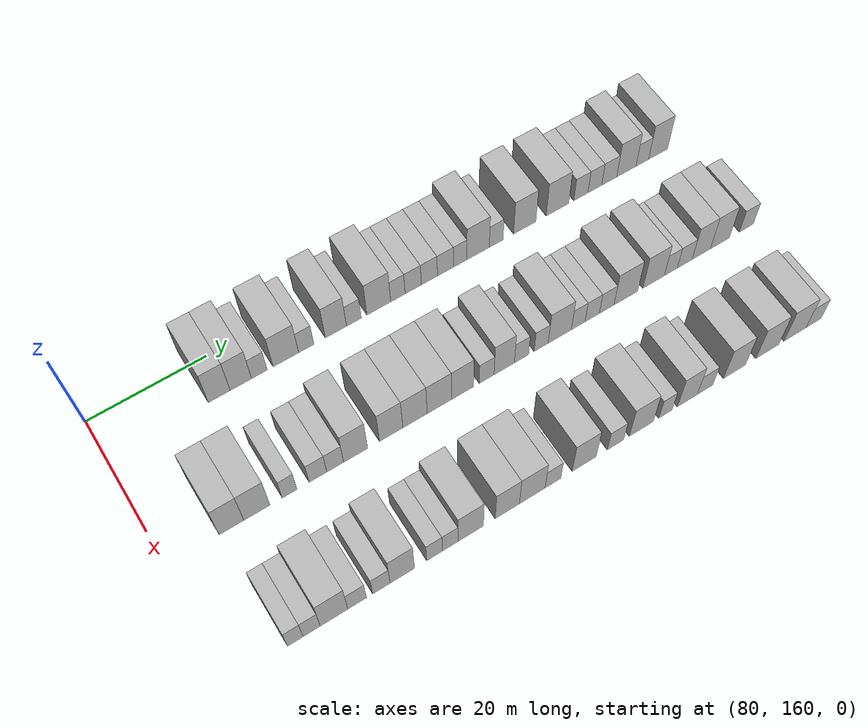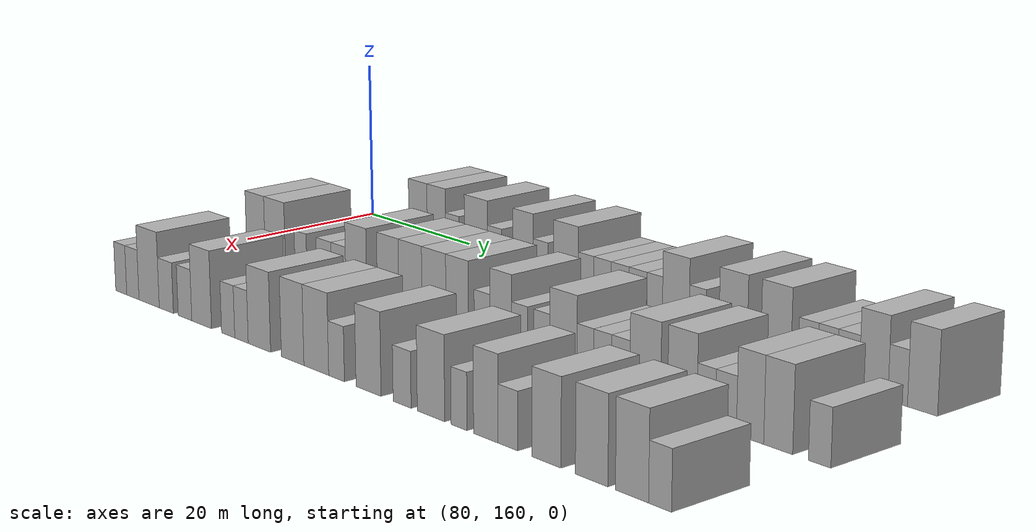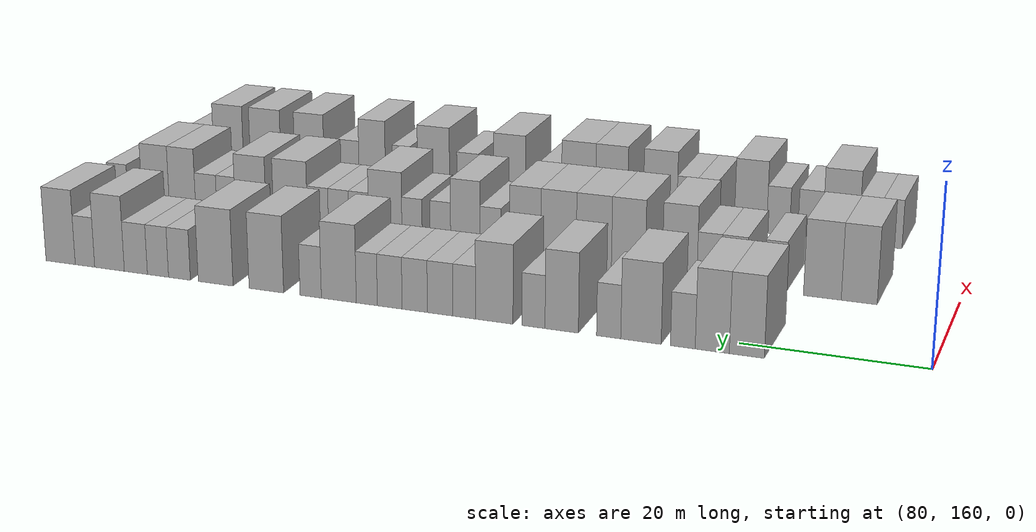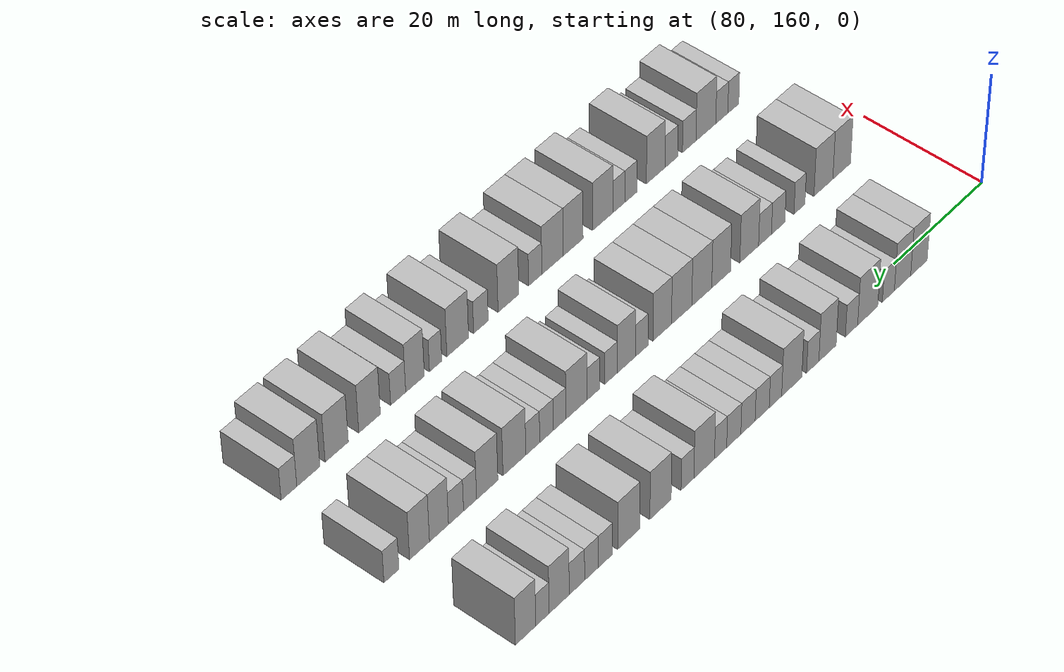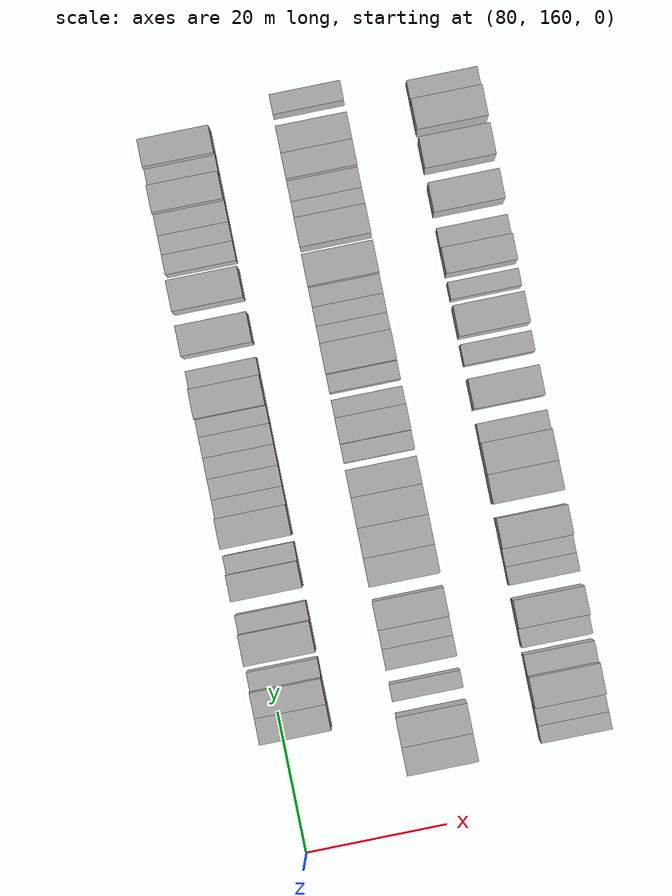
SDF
<sdf version="1.6">
 <world name="default">
  <model name="building_659">
   <static>1</static>
   <pose>82.0000 178.4962 0 0.000000 0.000000 0.000000</pose>
   <link name="link">
    <pose>0 0 4.50 0 0 0</pose>
    <collision name="collision"><geometry><box><size>10.0000 3.6787 9.0000</size></box></geometry></collision>
    <visual name="visual">
     <cast_shadows>0</cast_shadows>
     <geometry><box><size>10.0000 3.6787 9.0000</size></box></geometry>
     <material>
      <script>
       <uri>model://HANNAS_wall/materials/scripts</uri>
       <uri>model://HANNAS_wall/materials/textures</uri>
       <name>vrc/HANNAS_wall</name>
      </script>
     </material>
    </visual>
   </link>
  </model>
  <model name="building_660">
   <static>1</static>
   <pose>82.0000 182.1431 0 0.000000 0.000000 0.000000</pose>
   <link name="link">
    <pose>0 0 4.50 0 0 0</pose>
    <collision name="collision"><geometry><box><size>10.0000 3.6151 9.0000</size></box></geometry></collision>
    <visual name="visual">
     <cast_shadows>0</cast_shadows>
     <geometry><box><size>10.0000 3.6151 9.0000</size></box></geometry>
     <material>
      <script>
       <uri>model://HANNAS_wall/materials/scripts</uri>
       <uri>model://HANNAS_wall/materials/textures</uri>
       <name>vrc/HANNAS_wall</name>
      </script>
     </material>
    </visual>
   </link>
  </model>
  <model name="building_661">
   <static>1</static>
   <pose>82.0000 185.2763 0 0.000000 0.000000 0.000000</pose>
   <link name="link">
    <pose>0 0 3.00 0 0 0</pose>
    <collision name="collision"><geometry><box><size>10.0000 2.6513 6.0000</size></box></geometry></collision>
    <visual name="visual">
     <cast_shadows>0</cast_shadows>
     <geometry><box><size>10.0000 2.6513 6.0000</size></box></geometry>
     <material>
      <script>
       <uri>model://HANNAS_wall/materials/scripts</uri>
       <uri>model://HANNAS_wall/materials/textures</uri>
       <name>vrc/HANNAS_wall</name>
      </script>
     </material>
    </visual>
   </link>
  </model>
  <model name="building_662">
   <static>1</static>
   <pose>82.0000 189.7979 0 0.000000 0.000000 0.000000</pose>
   <link name="link">
    <pose>0 0 4.50 0 0 0</pose>
    <collision name="collision"><geometry><box><size>10.0000 4.3919 9.0000</size></box></geometry></collision>
    <visual name="visual">
     <cast_shadows>0</cast_shadows>
     <geometry><box><size>10.0000 4.3919 9.0000</size></box></geometry>
     <material>
      <script>
       <uri>model://HANNAS_wall/materials/scripts</uri>
       <uri>model://HANNAS_wall/materials/textures</uri>
       <name>vrc/HANNAS_wall</name>
      </script>
     </material>
    </visual>
   </link>
  </model>
  <model name="building_663">
   <static>1</static>
   <pose>82.0000 193.3204 0 0.000000 0.000000 0.000000</pose>
   <link name="link">
    <pose>0 0 3.00 0 0 0</pose>
    <collision name="collision"><geometry><box><size>10.0000 2.6532 6.0000</size></box></geometry></collision>
    <visual name="visual">
     <cast_shadows>0</cast_shadows>
     <geometry><box><size>10.0000 2.6532 6.0000</size></box></geometry>
     <material>
      <script>
       <uri>model://HANNAS_wall/materials/scripts</uri>
       <uri>model://HANNAS_wall/materials/textures</uri>
       <name>vrc/HANNAS_wall</name>
      </script>
     </material>
    </visual>
   </link>
  </model>
  <model name="building_664">
   <static>1</static>
   <pose>82.0000 198.5083 0 0.000000 0.000000 0.000000</pose>
   <link name="link">
    <pose>0 0 4.50 0 0 0</pose>
    <collision name="collision"><geometry><box><size>10.0000 3.7227 9.0000</size></box></geometry></collision>
    <visual name="visual">
     <cast_shadows>0</cast_shadows>
     <geometry><box><size>10.0000 3.7227 9.0000</size></box></geometry>
     <material>
      <script>
       <uri>model://HANNAS_wall/materials/scripts</uri>
       <uri>model://HANNAS_wall/materials/textures</uri>
       <name>vrc/HANNAS_wall</name>
      </script>
     </material>
    </visual>
   </link>
  </model>
  <model name="building_665">
   <static>1</static>
   <pose>82.0000 201.6762 0 0.000000 0.000000 0.000000</pose>
   <link name="link">
    <pose>0 0 3.00 0 0 0</pose>
    <collision name="collision"><geometry><box><size>10.0000 2.6131 6.0000</size></box></geometry></collision>
    <visual name="visual">
     <cast_shadows>0</cast_shadows>
     <geometry><box><size>10.0000 2.6131 6.0000</size></box></geometry>
     <material>
      <script>
       <uri>model://HANNAS_wall/materials/scripts</uri>
       <uri>model://HANNAS_wall/materials/textures</uri>
       <name>vrc/HANNAS_wall</name>
      </script>
     </material>
    </visual>
   </link>
  </model>
  <model name="building_666">
   <static>1</static>
   <pose>82.0000 206.1211 0 0.000000 0.000000 0.000000</pose>
   <link name="link">
    <pose>0 0 4.50 0 0 0</pose>
    <collision name="collision"><geometry><box><size>10.0000 4.2768 9.0000</size></box></geometry></collision>
    <visual name="visual">
     <cast_shadows>0</cast_shadows>
     <geometry><box><size>10.0000 4.2768 9.0000</size></box></geometry>
     <material>
      <script>
       <uri>model://HANNAS_wall/materials/scripts</uri>
       <uri>model://HANNAS_wall/materials/textures</uri>
       <name>vrc/HANNAS_wall</name>
      </script>
     </material>
    </visual>
   </link>
  </model>
  <model name="building_667">
   <static>1</static>
   <pose>82.0000 209.5627 0 0.000000 0.000000 0.000000</pose>
   <link name="link">
    <pose>0 0 3.00 0 0 0</pose>
    <collision name="collision"><geometry><box><size>10.0000 2.6064 6.0000</size></box></geometry></collision>
    <visual name="visual">
     <cast_shadows>0</cast_shadows>
     <geometry><box><size>10.0000 2.6064 6.0000</size></box></geometry>
     <material>
      <script>
       <uri>model://HANNAS_wall/materials/scripts</uri>
       <uri>model://HANNAS_wall/materials/textures</uri>
       <name>vrc/HANNAS_wall</name>
      </script>
     </material>
    </visual>
   </link>
  </model>
  <model name="building_668">
   <static>1</static>
   <pose>82.0000 212.3404 0 0.000000 0.000000 0.000000</pose>
   <link name="link">
    <pose>0 0 3.00 0 0 0</pose>
    <collision name="collision"><geometry><box><size>10.0000 2.9490 6.0000</size></box></geometry></collision>
    <visual name="visual">
     <cast_shadows>0</cast_shadows>
     <geometry><box><size>10.0000 2.9490 6.0000</size></box></geometry>
     <material>
      <script>
       <uri>model://HANNAS_wall/materials/scripts</uri>
       <uri>model://HANNAS_wall/materials/textures</uri>
       <name>vrc/HANNAS_wall</name>
      </script>
     </material>
    </visual>
   </link>
  </model>
  <model name="building_669">
   <static>1</static>
   <pose>82.0000 215.2959 0 0.000000 0.000000 0.000000</pose>
   <link name="link">
    <pose>0 0 3.00 0 0 0</pose>
    <collision name="collision"><geometry><box><size>10.0000 2.9620 6.0000</size></box></geometry></collision>
    <visual name="visual">
     <cast_shadows>0</cast_shadows>
     <geometry><box><size>10.0000 2.9620 6.0000</size></box></geometry>
     <material>
      <script>
       <uri>model://HANNAS_wall/materials/scripts</uri>
       <uri>model://HANNAS_wall/materials/textures</uri>
       <name>vrc/HANNAS_wall</name>
      </script>
     </material>
    </visual>
   </link>
  </model>
  <model name="building_670">
   <static>1</static>
   <pose>82.0000 218.2406 0 0.000000 0.000000 0.000000</pose>
   <link name="link">
    <pose>0 0 3.00 0 0 0</pose>
    <collision name="collision"><geometry><box><size>10.0000 2.9273 6.0000</size></box></geometry></collision>
    <visual name="visual">
     <cast_shadows>0</cast_shadows>
     <geometry><box><size>10.0000 2.9273 6.0000</size></box></geometry>
     <material>
      <script>
       <uri>model://HANNAS_wall/materials/scripts</uri>
       <uri>model://HANNAS_wall/materials/textures</uri>
       <name>vrc/HANNAS_wall</name>
      </script>
     </material>
    </visual>
   </link>
  </model>
  <model name="building_671">
   <static>1</static>
   <pose>82.0000 220.9592 0 0.000000 0.000000 0.000000</pose>
   <link name="link">
    <pose>0 0 3.00 0 0 0</pose>
    <collision name="collision"><geometry><box><size>10.0000 2.5099 6.0000</size></box></geometry></collision>
    <visual name="visual">
     <cast_shadows>0</cast_shadows>
     <geometry><box><size>10.0000 2.5099 6.0000</size></box></geometry>
     <material>
      <script>
       <uri>model://HANNAS_wall/materials/scripts</uri>
       <uri>model://HANNAS_wall/materials/textures</uri>
       <name>vrc/HANNAS_wall</name>
      </script>
     </material>
    </visual>
   </link>
  </model>
  <model name="building_672">
   <static>1</static>
   <pose>82.0000 224.3136 0 0.000000 0.000000 0.000000</pose>
   <link name="link">
    <pose>0 0 4.50 0 0 0</pose>
    <collision name="collision"><geometry><box><size>10.0000 4.1989 9.0000</size></box></geometry></collision>
    <visual name="visual">
     <cast_shadows>0</cast_shadows>
     <geometry><box><size>10.0000 4.1989 9.0000</size></box></geometry>
     <material>
      <script>
       <uri>model://HANNAS_wall/materials/scripts</uri>
       <uri>model://HANNAS_wall/materials/textures</uri>
       <name>vrc/HANNAS_wall</name>
      </script>
     </material>
    </visual>
   </link>
  </model>
  <model name="building_673">
   <static>1</static>
   <pose>82.0000 227.7098 0 0.000000 0.000000 0.000000</pose>
   <link name="link">
    <pose>0 0 3.00 0 0 0</pose>
    <collision name="collision"><geometry><box><size>10.0000 2.5934 6.0000</size></box></geometry></collision>
    <visual name="visual">
     <cast_shadows>0</cast_shadows>
     <geometry><box><size>10.0000 2.5934 6.0000</size></box></geometry>
     <material>
      <script>
       <uri>model://HANNAS_wall/materials/scripts</uri>
       <uri>model://HANNAS_wall/materials/textures</uri>
       <name>vrc/HANNAS_wall</name>
      </script>
     </material>
    </visual>
   </link>
  </model>
  <model name="building_674">
   <static>1</static>
   <pose>82.0000 233.1360 0 0.000000 0.000000 0.000000</pose>
   <link name="link">
    <pose>0 0 4.50 0 0 0</pose>
    <collision name="collision"><geometry><box><size>10.0000 4.2591 9.0000</size></box></geometry></collision>
    <visual name="visual">
     <cast_shadows>0</cast_shadows>
     <geometry><box><size>10.0000 4.2591 9.0000</size></box></geometry>
     <material>
      <script>
       <uri>model://HANNAS_wall/materials/scripts</uri>
       <uri>model://HANNAS_wall/materials/textures</uri>
       <name>vrc/HANNAS_wall</name>
      </script>
     </material>
    </visual>
   </link>
  </model>
  <model name="building_675">
   <static>1</static>
   <pose>82.0000 239.4495 0 0.000000 0.000000 0.000000</pose>
   <link name="link">
    <pose>0 0 4.50 0 0 0</pose>
    <collision name="collision"><geometry><box><size>10.0000 4.3679 9.0000</size></box></geometry></collision>
    <visual name="visual">
     <cast_shadows>0</cast_shadows>
     <geometry><box><size>10.0000 4.3679 9.0000</size></box></geometry>
     <material>
      <script>
       <uri>model://HANNAS_wall/materials/scripts</uri>
       <uri>model://HANNAS_wall/materials/textures</uri>
       <name>vrc/HANNAS_wall</name>
      </script>
     </material>
    </visual>
   </link>
  </model>
  <model name="building_676">
   <static>1</static>
   <pose>82.0000 244.0221 0 0.000000 0.000000 0.000000</pose>
   <link name="link">
    <pose>0 0 3.00 0 0 0</pose>
    <collision name="collision"><geometry><box><size>10.0000 2.7771 6.0000</size></box></geometry></collision>
    <visual name="visual">
     <cast_shadows>0</cast_shadows>
     <geometry><box><size>10.0000 2.7771 6.0000</size></box></geometry>
     <material>
      <script>
       <uri>model://HANNAS_wall/materials/scripts</uri>
       <uri>model://HANNAS_wall/materials/textures</uri>
       <name>vrc/HANNAS_wall</name>
      </script>
     </material>
    </visual>
   </link>
  </model>
  <model name="building_677">
   <static>1</static>
   <pose>82.0000 246.7639 0 0.000000 0.000000 0.000000</pose>
   <link name="link">
    <pose>0 0 3.00 0 0 0</pose>
    <collision name="collision"><geometry><box><size>10.0000 2.7065 6.0000</size></box></geometry></collision>
    <visual name="visual">
     <cast_shadows>0</cast_shadows>
     <geometry><box><size>10.0000 2.7065 6.0000</size></box></geometry>
     <material>
      <script>
       <uri>model://HANNAS_wall/materials/scripts</uri>
       <uri>model://HANNAS_wall/materials/textures</uri>
       <name>vrc/HANNAS_wall</name>
      </script>
     </material>
    </visual>
   </link>
  </model>
  <model name="building_678">
   <static>1</static>
   <pose>82.0000 249.6074 0 0.000000 0.000000 0.000000</pose>
   <link name="link">
    <pose>0 0 3.00 0 0 0</pose>
    <collision name="collision"><geometry><box><size>10.0000 2.9806 6.0000</size></box></geometry></collision>
    <visual name="visual">
     <cast_shadows>0</cast_shadows>
     <geometry><box><size>10.0000 2.9806 6.0000</size></box></geometry>
     <material>
      <script>
       <uri>model://HANNAS_wall/materials/scripts</uri>
       <uri>model://HANNAS_wall/materials/textures</uri>
       <name>vrc/HANNAS_wall</name>
      </script>
     </material>
    </visual>
   </link>
  </model>
  <model name="building_679">
   <static>1</static>
   <pose>82.0000 253.0312 0 0.000000 0.000000 0.000000</pose>
   <link name="link">
    <pose>0 0 4.50 0 0 0</pose>
    <collision name="collision"><geometry><box><size>10.0000 3.8669 9.0000</size></box></geometry></collision>
    <visual name="visual">
     <cast_shadows>0</cast_shadows>
     <geometry><box><size>10.0000 3.8669 9.0000</size></box></geometry>
     <material>
      <script>
       <uri>model://HANNAS_wall/materials/scripts</uri>
       <uri>model://HANNAS_wall/materials/textures</uri>
       <name>vrc/HANNAS_wall</name>
      </script>
     </material>
    </visual>
   </link>
  </model>
  <model name="building_680">
   <static>1</static>
   <pose>82.0000 256.2432 0 0.000000 0.000000 0.000000</pose>
   <link name="link">
    <pose>0 0 3.00 0 0 0</pose>
    <collision name="collision"><geometry><box><size>10.0000 2.5572 6.0000</size></box></geometry></collision>
    <visual name="visual">
     <cast_shadows>0</cast_shadows>
     <geometry><box><size>10.0000 2.5572 6.0000</size></box></geometry>
     <material>
      <script>
       <uri>model://HANNAS_wall/materials/scripts</uri>
       <uri>model://HANNAS_wall/materials/textures</uri>
       <name>vrc/HANNAS_wall</name>
      </script>
     </material>
    </visual>
   </link>
  </model>
  <model name="building_681">
   <static>1</static>
   <pose>82.0000 259.4577 0 0.000000 0.000000 0.000000</pose>
   <link name="link">
    <pose>0 0 4.50 0 0 0</pose>
    <collision name="collision"><geometry><box><size>10.0000 3.8717 9.0000</size></box></geometry></collision>
    <visual name="visual">
     <cast_shadows>0</cast_shadows>
     <geometry><box><size>10.0000 3.8717 9.0000</size></box></geometry>
     <material>
      <script>
       <uri>model://HANNAS_wall/materials/scripts</uri>
       <uri>model://HANNAS_wall/materials/textures</uri>
       <name>vrc/HANNAS_wall</name>
      </script>
     </material>
    </visual>
   </link>
  </model>
  <model name="building_835">
   <static>1</static>
   <pose>101.0000 170.4415 0 0.000000 0.000000 0.000000</pose>
   <link name="link">
    <pose>0 0 4.50 0 0 0</pose>
    <collision name="collision"><geometry><box><size>10.0000 3.9598 9.0000</size></box></geometry></collision>
    <visual name="visual">
     <cast_shadows>0</cast_shadows>
     <geometry><box><size>10.0000 3.9598 9.0000</size></box></geometry>
     <material>
      <script>
       <uri>model://HANNAS_wall/materials/scripts</uri>
       <uri>model://HANNAS_wall/materials/textures</uri>
       <name>vrc/HANNAS_wall</name>
      </script>
     </material>
    </visual>
   </link>
  </model>
  <model name="building_836">
   <static>1</static>
   <pose>101.0000 174.5262 0 0.000000 0.000000 0.000000</pose>
   <link name="link">
    <pose>0 0 4.50 0 0 0</pose>
    <collision name="collision"><geometry><box><size>10.0000 4.2097 9.0000</size></box></geometry></collision>
    <visual name="visual">
     <cast_shadows>0</cast_shadows>
     <geometry><box><size>10.0000 4.2097 9.0000</size></box></geometry>
     <material>
      <script>
       <uri>model://HANNAS_wall/materials/scripts</uri>
       <uri>model://HANNAS_wall/materials/textures</uri>
       <name>vrc/HANNAS_wall</name>
      </script>
     </material>
    </visual>
   </link>
  </model>
  <model name="building_837">
   <static>1</static>
   <pose>101.0000 179.8396 0 0.000000 0.000000 0.000000</pose>
   <link name="link">
    <pose>0 0 3.00 0 0 0</pose>
    <collision name="collision"><geometry><box><size>10.0000 2.4171 6.0000</size></box></geometry></collision>
    <visual name="visual">
     <cast_shadows>0</cast_shadows>
     <geometry><box><size>10.0000 2.4171 6.0000</size></box></geometry>
     <material>
      <script>
       <uri>model://HANNAS_wall/materials/scripts</uri>
       <uri>model://HANNAS_wall/materials/textures</uri>
       <name>vrc/HANNAS_wall</name>
      </script>
     </material>
    </visual>
   </link>
  </model>
  <model name="building_838">
   <static>1</static>
   <pose>101.0000 184.5158 0 0.000000 0.000000 0.000000</pose>
   <link name="link">
    <pose>0 0 3.00 0 0 0</pose>
    <collision name="collision"><geometry><box><size>10.0000 2.9354 6.0000</size></box></geometry></collision>
    <visual name="visual">
     <cast_shadows>0</cast_shadows>
     <geometry><box><size>10.0000 2.9354 6.0000</size></box></geometry>
     <material>
      <script>
       <uri>model://HANNAS_wall/materials/scripts</uri>
       <uri>model://HANNAS_wall/materials/textures</uri>
       <name>vrc/HANNAS_wall</name>
      </script>
     </material>
    </visual>
   </link>
  </model>
  <model name="building_839">
   <static>1</static>
   <pose>101.0000 187.3850 0 0.000000 0.000000 0.000000</pose>
   <link name="link">
    <pose>0 0 3.00 0 0 0</pose>
    <collision name="collision"><geometry><box><size>10.0000 2.8029 6.0000</size></box></geometry></collision>
    <visual name="visual">
     <cast_shadows>0</cast_shadows>
     <geometry><box><size>10.0000 2.8029 6.0000</size></box></geometry>
     <material>
      <script>
       <uri>model://HANNAS_wall/materials/scripts</uri>
       <uri>model://HANNAS_wall/materials/textures</uri>
       <name>vrc/HANNAS_wall</name>
      </script>
     </material>
    </visual>
   </link>
  </model>
  <model name="building_840">
   <static>1</static>
   <pose>101.0000 190.8097 0 0.000000 0.000000 0.000000</pose>
   <link name="link">
    <pose>0 0 4.50 0 0 0</pose>
    <collision name="collision"><geometry><box><size>10.0000 4.0464 9.0000</size></box></geometry></collision>
    <visual name="visual">
     <cast_shadows>0</cast_shadows>
     <geometry><box><size>10.0000 4.0464 9.0000</size></box></geometry>
     <material>
      <script>
       <uri>model://HANNAS_wall/materials/scripts</uri>
       <uri>model://HANNAS_wall/materials/textures</uri>
       <name>vrc/HANNAS_wall</name>
      </script>
     </material>
    </visual>
   </link>
  </model>
  <model name="building_841">
   <static>1</static>
   <pose>101.0000 196.8350 0 0.000000 0.000000 0.000000</pose>
   <link name="link">
    <pose>0 0 4.50 0 0 0</pose>
    <collision name="collision"><geometry><box><size>10.0000 4.0042 9.0000</size></box></geometry></collision>
    <visual name="visual">
     <cast_shadows>0</cast_shadows>
     <geometry><box><size>10.0000 4.0042 9.0000</size></box></geometry>
     <material>
      <script>
       <uri>model://HANNAS_wall/materials/scripts</uri>
       <uri>model://HANNAS_wall/materials/textures</uri>
       <name>vrc/HANNAS_wall</name>
      </script>
     </material>
    </visual>
   </link>
  </model>
  <model name="building_842">
   <static>1</static>
   <pose>101.0000 200.9502 0 0.000000 0.000000 0.000000</pose>
   <link name="link">
    <pose>0 0 4.50 0 0 0</pose>
    <collision name="collision"><geometry><box><size>10.0000 4.2261 9.0000</size></box></geometry></collision>
    <visual name="visual">
     <cast_shadows>0</cast_shadows>
     <geometry><box><size>10.0000 4.2261 9.0000</size></box></geometry>
     <material>
      <script>
       <uri>model://HANNAS_wall/materials/scripts</uri>
       <uri>model://HANNAS_wall/materials/textures</uri>
       <name>vrc/HANNAS_wall</name>
      </script>
     </material>
    </visual>
   </link>
  </model>
  <model name="building_843">
   <static>1</static>
   <pose>101.0000 205.1934 0 0.000000 0.000000 0.000000</pose>
   <link name="link">
    <pose>0 0 4.50 0 0 0</pose>
    <collision name="collision"><geometry><box><size>10.0000 4.2603 9.0000</size></box></geometry></collision>
    <visual name="visual">
     <cast_shadows>0</cast_shadows>
     <geometry><box><size>10.0000 4.2603 9.0000</size></box></geometry>
     <material>
      <script>
       <uri>model://HANNAS_wall/materials/scripts</uri>
       <uri>model://HANNAS_wall/materials/textures</uri>
       <name>vrc/HANNAS_wall</name>
      </script>
     </material>
    </visual>
   </link>
  </model>
  <model name="building_844">
   <static>1</static>
   <pose>101.0000 209.2634 0 0.000000 0.000000 0.000000</pose>
   <link name="link">
    <pose>0 0 4.50 0 0 0</pose>
    <collision name="collision"><geometry><box><size>10.0000 3.8798 9.0000</size></box></geometry></collision>
    <visual name="visual">
     <cast_shadows>0</cast_shadows>
     <geometry><box><size>10.0000 3.8798 9.0000</size></box></geometry>
     <material>
      <script>
       <uri>model://HANNAS_wall/materials/scripts</uri>
       <uri>model://HANNAS_wall/materials/textures</uri>
       <name>vrc/HANNAS_wall</name>
      </script>
     </material>
    </visual>
   </link>
  </model>
  <model name="building_845">
   <static>1</static>
   <pose>101.0000 213.5293 0 0.000000 0.000000 0.000000</pose>
   <link name="link">
    <pose>0 0 3.00 0 0 0</pose>
    <collision name="collision"><geometry><box><size>10.0000 2.6518 6.0000</size></box></geometry></collision>
    <visual name="visual">
     <cast_shadows>0</cast_shadows>
     <geometry><box><size>10.0000 2.6518 6.0000</size></box></geometry>
     <material>
      <script>
       <uri>model://HANNAS_wall/materials/scripts</uri>
       <uri>model://HANNAS_wall/materials/textures</uri>
       <name>vrc/HANNAS_wall</name>
      </script>
     </material>
    </visual>
   </link>
  </model>
  <model name="building_846">
   <static>1</static>
   <pose>101.0000 216.6802 0 0.000000 0.000000 0.000000</pose>
   <link name="link">
    <pose>0 0 4.50 0 0 0</pose>
    <collision name="collision"><geometry><box><size>10.0000 3.6499 9.0000</size></box></geometry></collision>
    <visual name="visual">
     <cast_shadows>0</cast_shadows>
     <geometry><box><size>10.0000 3.6499 9.0000</size></box></geometry>
     <material>
      <script>
       <uri>model://HANNAS_wall/materials/scripts</uri>
       <uri>model://HANNAS_wall/materials/textures</uri>
       <name>vrc/HANNAS_wall</name>
      </script>
     </material>
    </visual>
   </link>
  </model>
  <model name="building_847">
   <static>1</static>
   <pose>101.0000 219.7996 0 0.000000 0.000000 0.000000</pose>
   <link name="link">
    <pose>0 0 3.00 0 0 0</pose>
    <collision name="collision"><geometry><box><size>10.0000 2.5889 6.0000</size></box></geometry></collision>
    <visual name="visual">
     <cast_shadows>0</cast_shadows>
     <geometry><box><size>10.0000 2.5889 6.0000</size></box></geometry>
     <material>
      <script>
       <uri>model://HANNAS_wall/materials/scripts</uri>
       <uri>model://HANNAS_wall/materials/textures</uri>
       <name>vrc/HANNAS_wall</name>
      </script>
     </material>
    </visual>
   </link>
  </model>
  <model name="building_848">
   <static>1</static>
   <pose>101.0000 223.3820 0 0.000000 0.000000 0.000000</pose>
   <link name="link">
    <pose>0 0 3.00 0 0 0</pose>
    <collision name="collision"><geometry><box><size>10.0000 2.5759 6.0000</size></box></geometry></collision>
    <visual name="visual">
     <cast_shadows>0</cast_shadows>
     <geometry><box><size>10.0000 2.5759 6.0000</size></box></geometry>
     <material>
      <script>
       <uri>model://HANNAS_wall/materials/scripts</uri>
       <uri>model://HANNAS_wall/materials/textures</uri>
       <name>vrc/HANNAS_wall</name>
      </script>
     </material>
    </visual>
   </link>
  </model>
  <model name="building_849">
   <static>1</static>
   <pose>101.0000 226.8044 0 0.000000 0.000000 0.000000</pose>
   <link name="link">
    <pose>0 0 4.50 0 0 0</pose>
    <collision name="collision"><geometry><box><size>10.0000 4.2690 9.0000</size></box></geometry></collision>
    <visual name="visual">
     <cast_shadows>0</cast_shadows>
     <geometry><box><size>10.0000 4.2690 9.0000</size></box></geometry>
     <material>
      <script>
       <uri>model://HANNAS_wall/materials/scripts</uri>
       <uri>model://HANNAS_wall/materials/textures</uri>
       <name>vrc/HANNAS_wall</name>
      </script>
     </material>
    </visual>
   </link>
  </model>
  <model name="building_850">
   <static>1</static>
   <pose>101.0000 230.2138 0 0.000000 0.000000 0.000000</pose>
   <link name="link">
    <pose>0 0 3.00 0 0 0</pose>
    <collision name="collision"><geometry><box><size>10.0000 2.5498 6.0000</size></box></geometry></collision>
    <visual name="visual">
     <cast_shadows>0</cast_shadows>
     <geometry><box><size>10.0000 2.5498 6.0000</size></box></geometry>
     <material>
      <script>
       <uri>model://HANNAS_wall/materials/scripts</uri>
       <uri>model://HANNAS_wall/materials/textures</uri>
       <name>vrc/HANNAS_wall</name>
      </script>
     </material>
    </visual>
   </link>
  </model>
  <model name="building_851">
   <static>1</static>
   <pose>101.0000 232.8340 0 0.000000 0.000000 0.000000</pose>
   <link name="link">
    <pose>0 0 3.00 0 0 0</pose>
    <collision name="collision"><geometry><box><size>10.0000 2.6905 6.0000</size></box></geometry></collision>
    <visual name="visual">
     <cast_shadows>0</cast_shadows>
     <geometry><box><size>10.0000 2.6905 6.0000</size></box></geometry>
     <material>
      <script>
       <uri>model://HANNAS_wall/materials/scripts</uri>
       <uri>model://HANNAS_wall/materials/textures</uri>
       <name>vrc/HANNAS_wall</name>
      </script>
     </material>
    </visual>
   </link>
  </model>
  <model name="building_852">
   <static>1</static>
   <pose>101.0000 235.5538 0 0.000000 0.000000 0.000000</pose>
   <link name="link">
    <pose>0 0 3.00 0 0 0</pose>
    <collision name="collision"><geometry><box><size>10.0000 2.7492 6.0000</size></box></geometry></collision>
    <visual name="visual">
     <cast_shadows>0</cast_shadows>
     <geometry><box><size>10.0000 2.7492 6.0000</size></box></geometry>
     <material>
      <script>
       <uri>model://HANNAS_wall/materials/scripts</uri>
       <uri>model://HANNAS_wall/materials/textures</uri>
       <name>vrc/HANNAS_wall</name>
      </script>
     </material>
    </visual>
   </link>
  </model>
  <model name="building_853">
   <static>1</static>
   <pose>101.0000 239.1760 0 0.000000 0.000000 0.000000</pose>
   <link name="link">
    <pose>0 0 4.50 0 0 0</pose>
    <collision name="collision"><geometry><box><size>10.0000 4.4952 9.0000</size></box></geometry></collision>
    <visual name="visual">
     <cast_shadows>0</cast_shadows>
     <geometry><box><size>10.0000 4.4952 9.0000</size></box></geometry>
     <material>
      <script>
       <uri>model://HANNAS_wall/materials/scripts</uri>
       <uri>model://HANNAS_wall/materials/textures</uri>
       <name>vrc/HANNAS_wall</name>
      </script>
     </material>
    </visual>
   </link>
  </model>
  <model name="building_854">
   <static>1</static>
   <pose>101.0000 244.4934 0 0.000000 0.000000 0.000000</pose>
   <link name="link">
    <pose>0 0 4.50 0 0 0</pose>
    <collision name="collision"><geometry><box><size>10.0000 4.1396 9.0000</size></box></geometry></collision>
    <visual name="visual">
     <cast_shadows>0</cast_shadows>
     <geometry><box><size>10.0000 4.1396 9.0000</size></box></geometry>
     <material>
      <script>
       <uri>model://HANNAS_wall/materials/scripts</uri>
       <uri>model://HANNAS_wall/materials/textures</uri>
       <name>vrc/HANNAS_wall</name>
      </script>
     </material>
    </visual>
   </link>
  </model>
  <model name="building_855">
   <static>1</static>
   <pose>101.0000 247.8208 0 0.000000 0.000000 0.000000</pose>
   <link name="link">
    <pose>0 0 3.00 0 0 0</pose>
    <collision name="collision"><geometry><box><size>10.0000 2.5152 6.0000</size></box></geometry></collision>
    <visual name="visual">
     <cast_shadows>0</cast_shadows>
     <geometry><box><size>10.0000 2.5152 6.0000</size></box></geometry>
     <material>
      <script>
       <uri>model://HANNAS_wall/materials/scripts</uri>
       <uri>model://HANNAS_wall/materials/textures</uri>
       <name>vrc/HANNAS_wall</name>
      </script>
     </material>
    </visual>
   </link>
  </model>
  <model name="building_856">
   <static>1</static>
   <pose>101.0000 250.5273 0 0.000000 0.000000 0.000000</pose>
   <link name="link">
    <pose>0 0 3.00 0 0 0</pose>
    <collision name="collision"><geometry><box><size>10.0000 2.8977 6.0000</size></box></geometry></collision>
    <visual name="visual">
     <cast_shadows>0</cast_shadows>
     <geometry><box><size>10.0000 2.8977 6.0000</size></box></geometry>
     <material>
      <script>
       <uri>model://HANNAS_wall/materials/scripts</uri>
       <uri>model://HANNAS_wall/materials/textures</uri>
       <name>vrc/HANNAS_wall</name>
      </script>
     </material>
    </visual>
   </link>
  </model>
  <model name="building_857">
   <static>1</static>
   <pose>101.0000 253.7915 0 0.000000 0.000000 0.000000</pose>
   <link name="link">
    <pose>0 0 4.50 0 0 0</pose>
    <collision name="collision"><geometry><box><size>10.0000 3.6309 9.0000</size></box></geometry></collision>
    <visual name="visual">
     <cast_shadows>0</cast_shadows>
     <geometry><box><size>10.0000 3.6309 9.0000</size></box></geometry>
     <material>
      <script>
       <uri>model://HANNAS_wall/materials/scripts</uri>
       <uri>model://HANNAS_wall/materials/textures</uri>
       <name>vrc/HANNAS_wall</name>
      </script>
     </material>
    </visual>
   </link>
  </model>
  <model name="building_858">
   <static>1</static>
   <pose>101.0000 257.4919 0 0.000000 0.000000 0.000000</pose>
   <link name="link">
    <pose>0 0 4.50 0 0 0</pose>
    <collision name="collision"><geometry><box><size>10.0000 3.7697 9.0000</size></box></geometry></collision>
    <visual name="visual">
     <cast_shadows>0</cast_shadows>
     <geometry><box><size>10.0000 3.7697 9.0000</size></box></geometry>
     <material>
      <script>
       <uri>model://HANNAS_wall/materials/scripts</uri>
       <uri>model://HANNAS_wall/materials/textures</uri>
       <name>vrc/HANNAS_wall</name>
      </script>
     </material>
    </visual>
   </link>
  </model>
  <model name="building_859">
   <static>1</static>
   <pose>101.0000 262.7873 0 0.000000 0.000000 0.000000</pose>
   <link name="link">
    <pose>0 0 3.00 0 0 0</pose>
    <collision name="collision"><geometry><box><size>10.0000 2.8212 6.0000</size></box></geometry></collision>
    <visual name="visual">
     <cast_shadows>0</cast_shadows>
     <geometry><box><size>10.0000 2.8212 6.0000</size></box></geometry>
     <material>
      <script>
       <uri>model://HANNAS_wall/materials/scripts</uri>
       <uri>model://HANNAS_wall/materials/textures</uri>
       <name>vrc/HANNAS_wall</name>
      </script>
     </material>
    </visual>
   </link>
  </model>
  <model name="building_1009">
   <static>1</static>
   <pose>120.0000 170.1293 0 0.000000 0.000000 0.000000</pose>
   <link name="link">
    <pose>0 0 3.00 0 0 0</pose>
    <collision name="collision"><geometry><box><size>10.0000 2.4352 6.0000</size></box></geometry></collision>
    <visual name="visual">
     <cast_shadows>0</cast_shadows>
     <geometry><box><size>10.0000 2.4352 6.0000</size></box></geometry>
     <material>
      <script>
       <uri>model://HANNAS_wall/materials/scripts</uri>
       <uri>model://HANNAS_wall/materials/textures</uri>
       <name>vrc/HANNAS_wall</name>
      </script>
     </material>
    </visual>
   </link>
  </model>
  <model name="building_1010">
   <static>1</static>
   <pose>120.0000 172.6848 0 0.000000 0.000000 0.000000</pose>
   <link name="link">
    <pose>0 0 3.00 0 0 0</pose>
    <collision name="collision"><geometry><box><size>10.0000 2.6758 6.0000</size></box></geometry></collision>
    <visual name="visual">
     <cast_shadows>0</cast_shadows>
     <geometry><box><size>10.0000 2.6758 6.0000</size></box></geometry>
     <material>
      <script>
       <uri>model://HANNAS_wall/materials/scripts</uri>
       <uri>model://HANNAS_wall/materials/textures</uri>
       <name>vrc/HANNAS_wall</name>
      </script>
     </material>
    </visual>
   </link>
  </model>
  <model name="building_1011">
   <static>1</static>
   <pose>120.0000 176.2009 0 0.000000 0.000000 0.000000</pose>
   <link name="link">
    <pose>0 0 4.50 0 0 0</pose>
    <collision name="collision"><geometry><box><size>10.0000 4.3563 9.0000</size></box></geometry></collision>
    <visual name="visual">
     <cast_shadows>0</cast_shadows>
     <geometry><box><size>10.0000 4.3563 9.0000</size></box></geometry>
     <material>
      <script>
       <uri>model://HANNAS_wall/materials/scripts</uri>
       <uri>model://HANNAS_wall/materials/textures</uri>
       <name>vrc/HANNAS_wall</name>
      </script>
     </material>
    </visual>
   </link>
  </model>
  <model name="building_1012">
   <static>1</static>
   <pose>120.0000 179.8647 0 0.000000 0.000000 0.000000</pose>
   <link name="link">
    <pose>0 0 3.00 0 0 0</pose>
    <collision name="collision"><geometry><box><size>10.0000 2.9712 6.0000</size></box></geometry></collision>
    <visual name="visual">
     <cast_shadows>0</cast_shadows>
     <geometry><box><size>10.0000 2.9712 6.0000</size></box></geometry>
     <material>
      <script>
       <uri>model://HANNAS_wall/materials/scripts</uri>
       <uri>model://HANNAS_wall/materials/textures</uri>
       <name>vrc/HANNAS_wall</name>
      </script>
     </material>
    </visual>
   </link>
  </model>
  <model name="building_1013">
   <static>1</static>
   <pose>120.0000 183.7533 0 0.000000 0.000000 0.000000</pose>
   <link name="link">
    <pose>0 0 3.00 0 0 0</pose>
    <collision name="collision"><geometry><box><size>10.0000 2.8061 6.0000</size></box></geometry></collision>
    <visual name="visual">
     <cast_shadows>0</cast_shadows>
     <geometry><box><size>10.0000 2.8061 6.0000</size></box></geometry>
     <material>
      <script>
       <uri>model://HANNAS_wall/materials/scripts</uri>
       <uri>model://HANNAS_wall/materials/textures</uri>
       <name>vrc/HANNAS_wall</name>
      </script>
     </material>
    </visual>
   </link>
  </model>
  <model name="building_1014">
   <static>1</static>
   <pose>120.0000 187.1519 0 0.000000 0.000000 0.000000</pose>
   <link name="link">
    <pose>0 0 4.50 0 0 0</pose>
    <collision name="collision"><geometry><box><size>10.0000 3.9910 9.0000</size></box></geometry></collision>
    <visual name="visual">
     <cast_shadows>0</cast_shadows>
     <geometry><box><size>10.0000 3.9910 9.0000</size></box></geometry>
     <material>
      <script>
       <uri>model://HANNAS_wall/materials/scripts</uri>
       <uri>model://HANNAS_wall/materials/textures</uri>
       <name>vrc/HANNAS_wall</name>
      </script>
     </material>
    </visual>
   </link>
  </model>
  <model name="building_1015">
   <static>1</static>
   <pose>120.0000 192.4397 0 0.000000 0.000000 0.000000</pose>
   <link name="link">
    <pose>0 0 3.00 0 0 0</pose>
    <collision name="collision"><geometry><box><size>10.0000 2.5846 6.0000</size></box></geometry></collision>
    <visual name="visual">
     <cast_shadows>0</cast_shadows>
     <geometry><box><size>10.0000 2.5846 6.0000</size></box></geometry>
     <material>
      <script>
       <uri>model://HANNAS_wall/materials/scripts</uri>
       <uri>model://HANNAS_wall/materials/textures</uri>
       <name>vrc/HANNAS_wall</name>
      </script>
     </material>
    </visual>
   </link>
  </model>
  <model name="building_1016">
   <static>1</static>
   <pose>120.0000 195.0320 0 0.000000 0.000000 0.000000</pose>
   <link name="link">
    <pose>0 0 3.00 0 0 0</pose>
    <collision name="collision"><geometry><box><size>10.0000 2.5999 6.0000</size></box></geometry></collision>
    <visual name="visual">
     <cast_shadows>0</cast_shadows>
     <geometry><box><size>10.0000 2.5999 6.0000</size></box></geometry>
     <material>
      <script>
       <uri>model://HANNAS_wall/materials/scripts</uri>
       <uri>model://HANNAS_wall/materials/textures</uri>
       <name>vrc/HANNAS_wall</name>
      </script>
     </material>
    </visual>
   </link>
  </model>
  <model name="building_1017">
   <static>1</static>
   <pose>120.0000 198.4590 0 0.000000 0.000000 0.000000</pose>
   <link name="link">
    <pose>0 0 4.50 0 0 0</pose>
    <collision name="collision"><geometry><box><size>10.0000 4.2543 9.0000</size></box></geometry></collision>
    <visual name="visual">
     <cast_shadows>0</cast_shadows>
     <geometry><box><size>10.0000 4.2543 9.0000</size></box></geometry>
     <material>
      <script>
       <uri>model://HANNAS_wall/materials/scripts</uri>
       <uri>model://HANNAS_wall/materials/textures</uri>
       <name>vrc/HANNAS_wall</name>
      </script>
     </material>
    </visual>
   </link>
  </model>
  <model name="building_1018">
   <static>1</static>
   <pose>120.0000 204.6502 0 0.000000 0.000000 0.000000</pose>
   <link name="link">
    <pose>0 0 4.50 0 0 0</pose>
    <collision name="collision"><geometry><box><size>10.0000 4.1280 9.0000</size></box></geometry></collision>
    <visual name="visual">
     <cast_shadows>0</cast_shadows>
     <geometry><box><size>10.0000 4.1280 9.0000</size></box></geometry>
     <material>
      <script>
       <uri>model://HANNAS_wall/materials/scripts</uri>
       <uri>model://HANNAS_wall/materials/textures</uri>
       <name>vrc/HANNAS_wall</name>
      </script>
     </material>
    </visual>
   </link>
  </model>
  <model name="building_1019">
   <static>1</static>
   <pose>120.0000 208.9242 0 0.000000 0.000000 0.000000</pose>
   <link name="link">
    <pose>0 0 4.50 0 0 0</pose>
    <collision name="collision"><geometry><box><size>10.0000 4.4200 9.0000</size></box></geometry></collision>
    <visual name="visual">
     <cast_shadows>0</cast_shadows>
     <geometry><box><size>10.0000 4.4200 9.0000</size></box></geometry>
     <material>
      <script>
       <uri>model://HANNAS_wall/materials/scripts</uri>
       <uri>model://HANNAS_wall/materials/textures</uri>
       <name>vrc/HANNAS_wall</name>
      </script>
     </material>
    </visual>
   </link>
  </model>
  <model name="building_1020">
   <static>1</static>
   <pose>120.0000 212.5081 0 0.000000 0.000000 0.000000</pose>
   <link name="link">
    <pose>0 0 3.00 0 0 0</pose>
    <collision name="collision"><geometry><box><size>10.0000 2.7478 6.0000</size></box></geometry></collision>
    <visual name="visual">
     <cast_shadows>0</cast_shadows>
     <geometry><box><size>10.0000 2.7478 6.0000</size></box></geometry>
     <material>
      <script>
       <uri>model://HANNAS_wall/materials/scripts</uri>
       <uri>model://HANNAS_wall/materials/textures</uri>
       <name>vrc/HANNAS_wall</name>
      </script>
     </material>
    </visual>
   </link>
  </model>
  <model name="building_1021">
   <static>1</static>
   <pose>120.0000 217.9964 0 0.000000 0.000000 0.000000</pose>
   <link name="link">
    <pose>0 0 4.50 0 0 0</pose>
    <collision name="collision"><geometry><box><size>10.0000 4.2288 9.0000</size></box></geometry></collision>
    <visual name="visual">
     <cast_shadows>0</cast_shadows>
     <geometry><box><size>10.0000 4.2288 9.0000</size></box></geometry>
     <material>
      <script>
       <uri>model://HANNAS_wall/materials/scripts</uri>
       <uri>model://HANNAS_wall/materials/textures</uri>
       <name>vrc/HANNAS_wall</name>
      </script>
     </material>
    </visual>
   </link>
  </model>
  <model name="building_1022">
   <static>1</static>
   <pose>120.0000 223.5782 0 0.000000 0.000000 0.000000</pose>
   <link name="link">
    <pose>0 0 3.00 0 0 0</pose>
    <collision name="collision"><geometry><box><size>10.0000 2.9347 6.0000</size></box></geometry></collision>
    <visual name="visual">
     <cast_shadows>0</cast_shadows>
     <geometry><box><size>10.0000 2.9347 6.0000</size></box></geometry>
     <material>
      <script>
       <uri>model://HANNAS_wall/materials/scripts</uri>
       <uri>model://HANNAS_wall/materials/textures</uri>
       <name>vrc/HANNAS_wall</name>
      </script>
     </material>
    </visual>
   </link>
  </model>
  <model name="building_1023">
   <static>1</static>
   <pose>120.0000 228.2210 0 0.000000 0.000000 0.000000</pose>
   <link name="link">
    <pose>0 0 4.50 0 0 0</pose>
    <collision name="collision"><geometry><box><size>10.0000 4.3509 9.0000</size></box></geometry></collision>
    <visual name="visual">
     <cast_shadows>0</cast_shadows>
     <geometry><box><size>10.0000 4.3509 9.0000</size></box></geometry>
     <material>
      <script>
       <uri>model://HANNAS_wall/materials/scripts</uri>
       <uri>model://HANNAS_wall/materials/textures</uri>
       <name>vrc/HANNAS_wall</name>
      </script>
     </material>
    </visual>
   </link>
  </model>
  <model name="building_1024">
   <static>1</static>
   <pose>120.0000 232.6184 0 0.000000 0.000000 0.000000</pose>
   <link name="link">
    <pose>0 0 3.00 0 0 0</pose>
    <collision name="collision"><geometry><box><size>10.0000 2.4438 6.0000</size></box></geometry></collision>
    <visual name="visual">
     <cast_shadows>0</cast_shadows>
     <geometry><box><size>10.0000 2.4438 6.0000</size></box></geometry>
     <material>
      <script>
       <uri>model://HANNAS_wall/materials/scripts</uri>
       <uri>model://HANNAS_wall/materials/textures</uri>
       <name>vrc/HANNAS_wall</name>
      </script>
     </material>
    </visual>
   </link>
  </model>
  <model name="building_1025">
   <static>1</static>
   <pose>120.0000 236.6744 0 0.000000 0.000000 0.000000</pose>
   <link name="link">
    <pose>0 0 4.50 0 0 0</pose>
    <collision name="collision"><geometry><box><size>10.0000 3.6683 9.0000</size></box></geometry></collision>
    <visual name="visual">
     <cast_shadows>0</cast_shadows>
     <geometry><box><size>10.0000 3.6683 9.0000</size></box></geometry>
     <material>
      <script>
       <uri>model://HANNAS_wall/materials/scripts</uri>
       <uri>model://HANNAS_wall/materials/textures</uri>
       <name>vrc/HANNAS_wall</name>
      </script>
     </material>
    </visual>
   </link>
  </model>
  <model name="building_1026">
   <static>1</static>
   <pose>120.0000 239.9710 0 0.000000 0.000000 0.000000</pose>
   <link name="link">
    <pose>0 0 3.00 0 0 0</pose>
    <collision name="collision"><geometry><box><size>10.0000 2.9249 6.0000</size></box></geometry></collision>
    <visual name="visual">
     <cast_shadows>0</cast_shadows>
     <geometry><box><size>10.0000 2.9249 6.0000</size></box></geometry>
     <material>
      <script>
       <uri>model://HANNAS_wall/materials/scripts</uri>
       <uri>model://HANNAS_wall/materials/textures</uri>
       <name>vrc/HANNAS_wall</name>
      </script>
     </material>
    </visual>
   </link>
  </model>
  <model name="building_1027">
   <static>1</static>
   <pose>120.0000 245.5174 0 0.000000 0.000000 0.000000</pose>
   <link name="link">
    <pose>0 0 4.50 0 0 0</pose>
    <collision name="collision"><geometry><box><size>10.0000 4.1679 9.0000</size></box></geometry></collision>
    <visual name="visual">
     <cast_shadows>0</cast_shadows>
     <geometry><box><size>10.0000 4.1679 9.0000</size></box></geometry>
     <material>
      <script>
       <uri>model://HANNAS_wall/materials/scripts</uri>
       <uri>model://HANNAS_wall/materials/textures</uri>
       <name>vrc/HANNAS_wall</name>
      </script>
     </material>
    </visual>
   </link>
  </model>
  <model name="building_1028">
   <static>1</static>
   <pose>120.0000 251.8118 0 0.000000 0.000000 0.000000</pose>
   <link name="link">
    <pose>0 0 4.50 0 0 0</pose>
    <collision name="collision"><geometry><box><size>10.0000 4.4210 9.0000</size></box></geometry></collision>
    <visual name="visual">
     <cast_shadows>0</cast_shadows>
     <geometry><box><size>10.0000 4.4210 9.0000</size></box></geometry>
     <material>
      <script>
       <uri>model://HANNAS_wall/materials/scripts</uri>
       <uri>model://HANNAS_wall/materials/textures</uri>
       <name>vrc/HANNAS_wall</name>
      </script>
     </material>
    </visual>
   </link>
  </model>
  <model name="building_1029">
   <static>1</static>
   <pose>120.0000 257.1930 0 0.000000 0.000000 0.000000</pose>
   <link name="link">
    <pose>0 0 4.50 0 0 0</pose>
    <collision name="collision"><geometry><box><size>10.0000 4.3413 9.0000</size></box></geometry></collision>
    <visual name="visual">
     <cast_shadows>0</cast_shadows>
     <geometry><box><size>10.0000 4.3413 9.0000</size></box></geometry>
     <material>
      <script>
       <uri>model://HANNAS_wall/materials/scripts</uri>
       <uri>model://HANNAS_wall/materials/textures</uri>
       <name>vrc/HANNAS_wall</name>
      </script>
     </material>
    </visual>
   </link>
  </model>
  <model name="building_1030">
   <static>1</static>
   <pose>120.0000 260.8333 0 0.000000 0.000000 0.000000</pose>
   <link name="link">
    <pose>0 0 3.00 0 0 0</pose>
    <collision name="collision"><geometry><box><size>10.0000 2.9394 6.0000</size></box></geometry></collision>
    <visual name="visual">
     <cast_shadows>0</cast_shadows>
     <geometry><box><size>10.0000 2.9394 6.0000</size></box></geometry>
     <material>
      <script>
       <uri>model://HANNAS_wall/materials/scripts</uri>
       <uri>model://HANNAS_wall/materials/textures</uri>
       <name>vrc/HANNAS_wall</name>
      </script>
     </material>
    </visual>
   </link>
  </model>
 </world>
</sdf>
